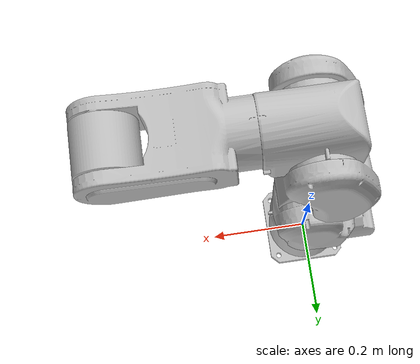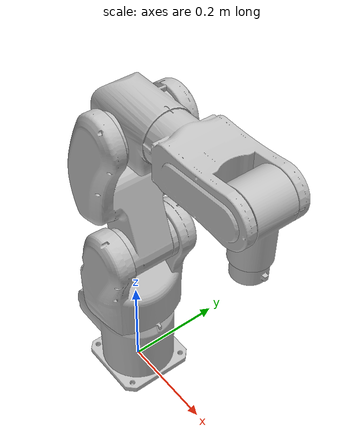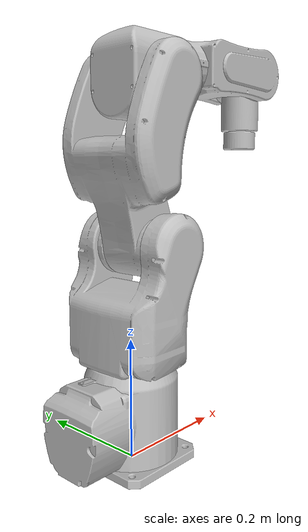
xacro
<?xml version="1.0" encoding="utf-8"?>
<robot name="probot_g603" xmlns:xacro="http://ros.org/wiki/xacro">
  <xacro:property name="M_PI" value="3.1415926536"/>

  <link
    name="base_link">
    <inertial>
      <origin
        xyz="-0.028518 -1.1667E-05 0.08195"
        rpy="0 0 0" />
      <mass
        value="3.3204" />
      <inertia
        ixx="0.010777"
        ixy="-1.596E-06"
        ixz="-0.00020998"
        iyy="0.016482"
        iyz="-2.5963E-06"
        izz="0.013979" />
    </inertial>
    <visual>
      <origin
        xyz="0 0 0"
        rpy="0 0 0" />
      <geometry>
        <mesh
          filename="package://probot_description/meshes/PROBOT_G603/base_link.STL" />
      </geometry>
      <material
        name="">
        <color
          rgba="0.75294 0.75294 0.75294 1" />
      </material>
    </visual>
    <collision>
      <origin
        xyz="0 0 0"
        rpy="0 0 0" />
      <geometry>
        <mesh
          filename="package://probot_description/meshes/PROBOT_G603/base_link.STL" />
      </geometry>
    </collision>
  </link>
  <link
    name="link_1">
    <inertial>
      <origin
        xyz="0.00241941988530422 -0.00146534565387966 -0.0923861604153122"
        rpy="0 0 0" />
      <mass
        value="3.7307435056373" />
      <inertia
        ixx="0.0169041641359656"
        ixy="0.000137791873064532"
        ixz="0.000655040696430778"
        iyy="0.0163318617776592"
        iyz="-0.00163003717920894"
        izz="0.00910156162623919" />
    </inertial>
    <visual>
      <origin
        xyz="0 0 0"
        rpy="0 0 0" />
      <geometry>
        <mesh
          filename="package://probot_description/meshes/PROBOT_G603/link_1.STL" />
      </geometry>
      <material
        name="">
        <color
          rgba="0.752941176470588 0.752941176470588 0.752941176470588 1" />
      </material>
    </visual>
    <collision>
      <origin
        xyz="0 0 0"
        rpy="0 0 0" />
      <geometry>
        <mesh
          filename="package://probot_description/meshes/PROBOT_G603/link_1.STL" />
      </geometry>
    </collision>
  </link>
  <joint
    name="joint_1"
    type="revolute">
    <origin
      xyz="0 0 0.16124"
      rpy="-3.1416 0 -1.5708" />
    <parent
      link="base_link" />
    <child
      link="link_1" />
    <axis
      xyz="0 0 -1" />
    <limit
      lower="-2.93"
      upper="2.93"
      effort="100"
      velocity="3" />
  </joint>
  <link
    name="link_2">
    <inertial>
      <origin
        xyz="-0.0282072830075999 0.0232137327470392 -0.13075194554663"
        rpy="0 0 0" />
      <mass
        value="3.30096317037357" />
      <inertia
        ixx="0.0233378680999026"
        ixy="0.000154636841189364"
        ixz="-0.0020631633953931"
        iyy="0.0219671562939965"
        iyz="0.000454596901115858"
        izz="0.00522032850803558" />
    </inertial>
    <visual>
      <origin
        xyz="0 0 0"
        rpy="0 0 0" />
      <geometry>
        <mesh
          filename="package://probot_description/meshes/PROBOT_G603/link_2.STL" />
      </geometry>
      <material
        name="">
        <color
          rgba="0.752941176470588 0.752941176470588 0.752941176470588 1" />
      </material>
    </visual>
    <collision>
      <origin
        xyz="0 0 0"
        rpy="0 0 0" />
      <geometry>
        <mesh
          filename="package://probot_description/meshes/PROBOT_G603/link_2.STL" />
      </geometry>
    </collision>
  </link>
  <joint
    name="joint_2"
    type="revolute">
    <origin
      xyz="0.029707 -0.023204 -0.19026"
      rpy="0 0 0" />
    <parent
      link="link_1" />
    <child
      link="link_2" />
    <axis
      xyz="1 0.00064911 0" />
    <limit
      lower="-2.37"
      upper="1.54"
      effort="100"
      velocity="3" />
  </joint>
  <link
    name="link_3">
    <inertial>
      <origin
        xyz="0.0572644920284897 0.00812316724292623 -0.00821309390763536"
        rpy="0 0 0" />
      <mass
        value="1.62036074220961" />
      <inertia
        ixx="0.00427963818935759"
        ixy="1.3357991688913E-05"
        ixz="-1.28125932138253E-05"
        iyy="0.00319049418871791"
        iyz="0.000260654786024863"
        izz="0.00361957738998353" />
    </inertial>
    <visual>
      <origin
        xyz="0 0 0"
        rpy="0 0 0" />
      <geometry>
        <mesh
          filename="package://probot_description/meshes/PROBOT_G603/link_3.STL" />
      </geometry>
      <material
        name="">
        <color
          rgba="0.752941176470588 0.752941176470588 0.752941176470588 1" />
      </material>
    </visual>
    <collision>
      <origin
        xyz="0 0 0"
        rpy="0 0 0" />
      <geometry>
        <mesh
          filename="package://probot_description/meshes/PROBOT_G603/link_3.STL" />
      </geometry>
    </collision>
  </link>
  <joint
    name="joint_3"
    type="revolute">
    <origin
      xyz="0.026207 2.6668E-05 -0.26043"
      rpy="0 0 3.1416" />
    <parent
      link="link_2" />
    <child
      link="link_3" />
    <axis
      xyz="-1 0 0" />
    <limit
      lower="-1.27"
      upper="3.28"
      effort="100"
      velocity="3" />
  </joint>
  <link
    name="link_4">
    <inertial>
      <origin
        xyz="0.00106649644604531 0.00401646854439508 -0.101767774981297"
        rpy="0 0 0" />
      <mass
        value="1.64749517817381" />
      <inertia
        ixx="0.00565146584921422"
        ixy="2.30935604586101E-07"
        ixz="-2.65796061555567E-05"
        iyy="0.00591104632605756"
        iyz="9.85447413976586E-05"
        izz="0.00203004196389942" />
    </inertial>
    <visual>
      <origin
        xyz="0 0 0"
        rpy="0 0 0" />
      <geometry>
        <mesh
          filename="package://probot_description/meshes/PROBOT_G603/link_4.STL" />
      </geometry>
      <material
        name="">
        <color
          rgba="0.752941176470588 0.752941176470588 0.752941176470588 1" />
      </material>
    </visual>
    <collision>
      <origin
        xyz="0 0 0"
        rpy="0 0 0" />
      <geometry>
        <mesh
          filename="package://probot_description/meshes/PROBOT_G603/link_4.STL" />
      </geometry>
    </collision>
  </link>
  <joint
    name="joint_4"
    type="revolute">
    <origin
      xyz="0.056155 0.07976 -0.027804"
      rpy="-1.5682 0 -3.1409" />
    <parent
      link="link_3" />
    <child
      link="link_4" />
    <axis
      xyz="0 0 -1" />
    <limit
      lower="-2.72"
      upper="2.72"
      effort="100"
      velocity="3" />
  </joint>
  <link
    name="link_5">
    <inertial>
      <origin
        xyz="-0.0411790220693793 -0.0218038179681588 5.10804574672119E-05"
        rpy="0 0 0" />
      <mass
        value="0.686166613628173" />
      <inertia
        ixx="0.00132263212499977"
        ixy="5.90361537979662E-07"
        ixz="6.88476103717453E-07"
        iyy="0.000588220900408187"
        iyz="9.33973775010868E-07"
        izz="0.00129230706392879" />
    </inertial>
    <visual>
      <origin
        xyz="0 0 0"
        rpy="0 0 0" />
      <geometry>
        <mesh
          filename="package://probot_description/meshes/PROBOT_G603/link_5.STL" />
      </geometry>
      <material
        name="">
        <color
          rgba="0.752941176470588 0.752941176470588 0.752941176470588 1" />
      </material>
    </visual>
    <collision>
      <origin
        xyz="0 0 0"
        rpy="0 0 0" />
      <geometry>
        <mesh
          filename="package://probot_description/meshes/PROBOT_G603/link_5.STL" />
      </geometry>
    </collision>
  </link>
  <joint
    name="joint_5"
    type="revolute">
    <origin
      xyz="0.041799 0.0050233 -0.19451"
      rpy="-0.0025793 0.00064911 0" />
    <parent
      link="link_4" />
    <child
      link="link_5" />
    <axis
      xyz="1 -0.00068526 -0.00053696" />
    <limit
      lower="-0.44"
      upper="3.6"
      effort="100"
      velocity="3" />
  </joint>
  <link
    name="link_6">
    <inertial>
      <origin
        xyz="-1.49769939650213E-05 -0.0138878614398256 -0.000131426803611889"
        rpy="0 0 0" />
      <mass
        value="0.0837748471575824" />
      <inertia
        ixx="2.37096430738442E-05"
        ixy="8.74965514307805E-09"
        ixz="1.62958387540116E-10"
        iyy="3.68399701824941E-05"
        iyz="7.52372333523442E-08"
        izz="2.31857885737575E-05" />
    </inertial>
    <visual>
      <origin
        xyz="0 0 0"
        rpy="0 0 0" />
      <geometry>
        <mesh
          filename="package://probot_description/meshes/PROBOT_G603/link_6.STL" />
      </geometry>
      <material
        name="">
        <color
          rgba="0.752941176470588 0.752941176470588 0.752941176470588 1" />
      </material>
    </visual>
    <collision>
      <origin
        xyz="0 0 0"
        rpy="0 0 0" />
      <geometry>
        <mesh
          filename="package://probot_description/meshes/PROBOT_G603/link_6.STL" />
      </geometry>
    </collision>
  </link>
  <joint
    name="joint_6"
    type="revolute">
    <origin
      xyz="-0.041164 -0.10196 6.9996E-05"
      rpy="0 0 0" />
    <parent
      link="link_5" />
    <child
      link="link_6" />
    <axis
      xyz="-0.00068479 -1 0.00087047" />
    <limit
      lower="-6.2"
      upper="6.2"
      effort="100"
      velocity="3" />
  </joint>

  <link name="tool0"/>
  <joint name="joint_tool0" type="fixed">
    <origin xyz="0 -0.03183 0" rpy="0 ${M_PI/2} ${M_PI/2}" />
    <parent link="link_6" />
    <child link="tool0" />
  </joint>

  <!-- Transmissions for ROS Control -->
  <xacro:macro name="transmission_block" params="joint_name">
    <transmission name="tran1">
      <type>transmission_interface/SimpleTransmission</type>
      <joint name="${joint_name}">
        <hardwareInterface>hardware_interface/PositionJointInterface</hardwareInterface>
      </joint>
      <actuator name="motor1">
        <hardwareInterface>hardware_interface/PositionJointInterface</hardwareInterface>
        <mechanicalReduction>1</mechanicalReduction>
      </actuator>
    </transmission>
  </xacro:macro>

  <xacro:transmission_block joint_name="joint_1"/>
  <xacro:transmission_block joint_name="joint_2"/>
  <xacro:transmission_block joint_name="joint_3"/>
  <xacro:transmission_block joint_name="joint_4"/>
  <xacro:transmission_block joint_name="joint_5"/>
  <xacro:transmission_block joint_name="joint_6"/>

  <!-- ros_control plugin -->
  <gazebo>
    <plugin name="gazebo_ros_control" filename="libgazebo_ros_control.so">
      <robotNamespace>/</robotNamespace>
      <robotSimType>gazebo_ros_control/DefaultRobotHWSim</robotSimType>
      <legacyModeNS>true</legacyModeNS>
    </plugin>
  </gazebo>
</robot>
